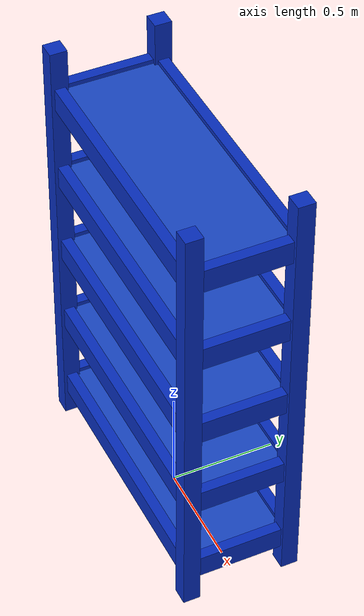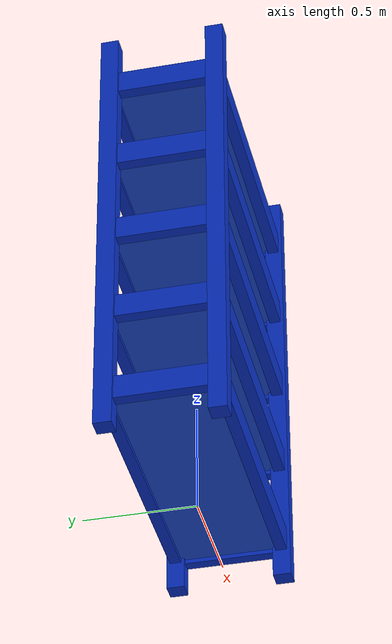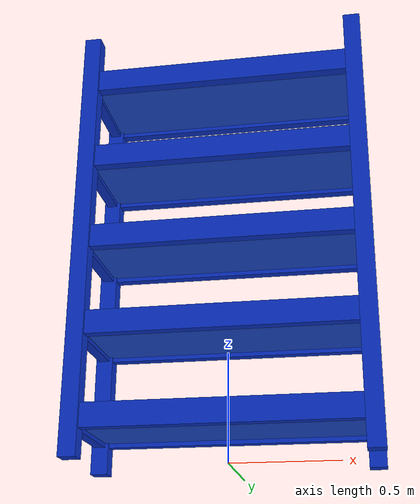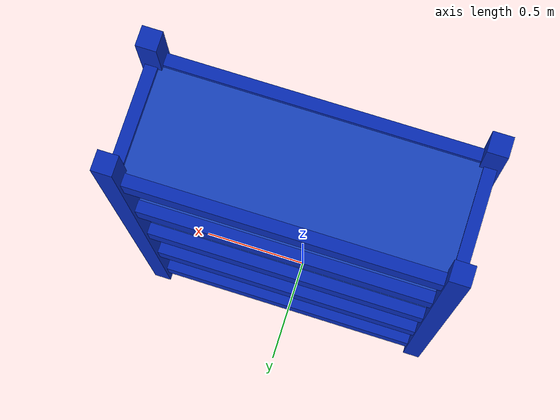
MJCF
<mujoco model="r2v2_storage_shelf">
  <compiler angle="radian"/>

  <asset>
    <material name="shelf_frame_material" rgba="0.03 0.18 0.75 1" reflectance="0.15" shininess="0.25"/>
    <material name="shelf_deck_material" rgba="0.10 0.28 0.78 1" reflectance="0.10" shininess="0.20"/>
  </asset>

  <worldbody>
    <!-- Five-level fixed shelf built from simple collision boxes. -->
    <body name="shelf">
      <!-- Four 2.70 m uprights. -->
      <geom name="front_left_upright" type="box" pos="-0.65 -0.24 1.05" size="0.04 0.04 1.05" material="shelf_frame_material"/>
      <geom name="front_right_upright" type="box" pos="0.65 -0.24 1.05" size="0.04 0.04 1.05" material="shelf_frame_material"/>
      <geom name="rear_left_upright" type="box" pos="-0.65 0.24 1.05" size="0.04 0.04 1.05" material="shelf_frame_material"/>
      <geom name="rear_right_upright" type="box" pos="0.65 0.24 1.05" size="0.04 0.04 1.05" material="shelf_frame_material"/>

      <!-- Five decks, spaced 0.42 m apart. -->
      <geom name="level_1_deck" type="box" pos="0 0 0.18" size="0.65 0.24 0.035" material="shelf_deck_material"/>
      <geom name="level_2_deck" type="box" pos="0 0 0.60" size="0.65 0.24 0.035" material="shelf_deck_material"/>
      <geom name="level_3_deck" type="box" pos="0 0 1.02" size="0.65 0.24 0.035" material="shelf_deck_material"/>
      <geom name="level_4_deck" type="box" pos="0 0 1.44" size="0.65 0.24 0.035" material="shelf_deck_material"/>
      <geom name="level_5_deck" type="box" pos="0 0 1.86" size="0.65 0.24 0.035" material="shelf_deck_material"/>

      <!-- Front and rear retaining rails. -->
      <geom name="level_1_front_rail" type="box" pos="0 -0.24 0.18" size="0.65 0.025 0.055" material="shelf_frame_material"/>
      <geom name="level_1_rear_rail" type="box" pos="0 0.24 0.18" size="0.65 0.025 0.055" material="shelf_frame_material"/>
      <geom name="level_2_front_rail" type="box" pos="0 -0.24 0.60" size="0.65 0.025 0.055" material="shelf_frame_material"/>
      <geom name="level_2_rear_rail" type="box" pos="0 0.24 0.60" size="0.65 0.025 0.055" material="shelf_frame_material"/>
      <geom name="level_3_front_rail" type="box" pos="0 -0.24 1.02" size="0.65 0.025 0.055" material="shelf_frame_material"/>
      <geom name="level_3_rear_rail" type="box" pos="0 0.24 1.02" size="0.65 0.025 0.055" material="shelf_frame_material"/>
      <geom name="level_4_front_rail" type="box" pos="0 -0.24 1.44" size="0.65 0.025 0.055" material="shelf_frame_material"/>
      <geom name="level_4_rear_rail" type="box" pos="0 0.24 1.44" size="0.65 0.025 0.055" material="shelf_frame_material"/>
      <geom name="level_5_front_rail" type="box" pos="0 -0.24 1.86" size="0.65 0.025 0.055" material="shelf_frame_material"/>
      <geom name="level_5_rear_rail" type="box" pos="0 0.24 1.86" size="0.65 0.025 0.055" material="shelf_frame_material"/>

      <!-- Side rails. -->
      <geom name="level_1_left_rail" type="box" pos="-0.65 0 0.18" size="0.025 0.24 0.055" material="shelf_frame_material"/>
      <geom name="level_1_right_rail" type="box" pos="0.65 0 0.18" size="0.025 0.24 0.055" material="shelf_frame_material"/>
      <geom name="level_2_left_rail" type="box" pos="-0.65 0 0.60" size="0.025 0.24 0.055" material="shelf_frame_material"/>
      <geom name="level_2_right_rail" type="box" pos="0.65 0 0.60" size="0.025 0.24 0.055" material="shelf_frame_material"/>
      <geom name="level_3_left_rail" type="box" pos="-0.65 0 1.02" size="0.025 0.24 0.055" material="shelf_frame_material"/>
      <geom name="level_3_right_rail" type="box" pos="0.65 0 1.02" size="0.025 0.24 0.055" material="shelf_frame_material"/>
      <geom name="level_4_left_rail" type="box" pos="-0.65 0 1.44" size="0.025 0.24 0.055" material="shelf_frame_material"/>
      <geom name="level_4_right_rail" type="box" pos="0.65 0 1.44" size="0.025 0.24 0.055" material="shelf_frame_material"/>
      <geom name="level_5_left_rail" type="box" pos="-0.65 0 1.86" size="0.025 0.24 0.055" material="shelf_frame_material"/>
      <geom name="level_5_right_rail" type="box" pos="0.65 0 1.86" size="0.025 0.24 0.055" material="shelf_frame_material"/>
    </body>
  </worldbody>
</mujoco>
